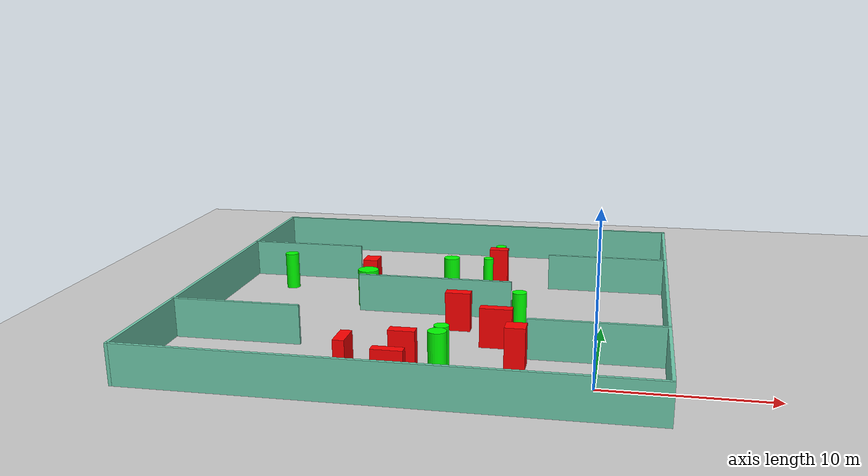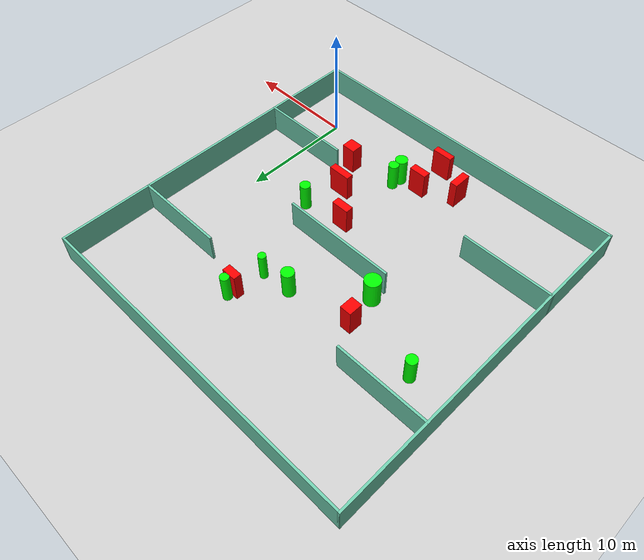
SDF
<sdf version="1.7">
 <world name="default">
  <light name="sun" type="directional">
   <pose>0 0 10 0 -0 0</pose>
   <diffuse>0.8 0.8 0.8 1</diffuse>
   <specular>0.2 0.2 0.2 1</specular>
   <attenuation>
    <range>1000</range>
    <constant>0.9</constant>
    <linear>0.01</linear>
    <quadratic>0.001</quadratic>
   </attenuation>
   <direction>-0.5 0.1 -0.9</direction>
   <spot><inner_angle>0</inner_angle><outer_angle>0</outer_angle><falloff>0</falloff></spot>
  </light>
  <model name="ground_plane">
   <static>1</static>
   <link name="link">
    <collision name="collision">
     <geometry><plane><normal>0 0 1</normal><size>100 100</size></plane></geometry>
     <surface>
      <contact><collide_bitmask>65535</collide_bitmask></contact>
      <friction><ode><mu>100</mu><mu2>50</mu2></ode></friction>
     </surface>
    </collision>
    <visual name="visual">
     <cast_shadows>0</cast_shadows>
     <geometry><plane><normal>0 0 1</normal><size>100 100</size></plane></geometry>
     <material>
      <script><uri>file://media/materials/scripts/gazebo.material</uri><name>Gazebo/Grey</name></script>
     </material>
    </visual>
   </link>
  </model>
  <gravity>0 0 -9.8</gravity>
  <magnetic_field>6e-06 2.3e-05 -4.2e-05</magnetic_field>
  <atmosphere type="adiabatic"/>
  <physics type="ode">
   <max_step_size>0.001</max_step_size>
   <real_time_factor>1</real_time_factor>
   <real_time_update_rate>1000</real_time_update_rate>
  </physics>
  <scene><ambient>0.4 0.4 0.4 1</ambient><background>0.7 0.7 0.7 1</background><shadows>1</shadows></scene>
  <spherical_coordinates>
   <surface_model>EARTH_WGS84</surface_model>
   <latitude_deg>0</latitude_deg>
   <longitude_deg>0</longitude_deg>
   <elevation>0</elevation>
   <heading_deg>0</heading_deg>
  </spherical_coordinates>
  <model name="my_base_walls">
   <link name="Wall_10">
    <collision name="Wall_10_Collision">
     <geometry><box><size>8.2 0.2 2.5</size></box></geometry>
     <pose>0 0 1.25 0 -0 0</pose>
    </collision>
    <visual name="Wall_10_Visual">
     <pose>0 0 1.25 0 -0 0</pose>
     <geometry><box><size>8.2 0.2 2.5</size></box></geometry>
     <material>
      <script><uri>file://media/materials/scripts/gazebo.material</uri><name>Gazebo/Grey</name></script>
      <ambient>0.435294 0.796078 0.67451 1</ambient>
     </material>
     <meta><layer>0</layer></meta>
    </visual>
    <pose>-11 -7 0 0 -0 0</pose>
   </link>
   <link name="Wall_12">
    <collision name="Wall_12_Collision">
     <geometry><box><size>8.2 0.2 2.5</size></box></geometry>
     <pose>0 0 1.25 0 -0 0</pose>
    </collision>
    <visual name="Wall_12_Visual">
     <pose>0 0 1.25 0 -0 0</pose>
     <geometry><box><size>8.2 0.2 2.5</size></box></geometry>
     <material>
      <script><uri>file://media/materials/scripts/gazebo.material</uri><name>Gazebo/Grey</name></script>
      <ambient>0.435294 0.796078 0.67451 1</ambient>
     </material>
     <meta><layer>0</layer></meta>
    </visual>
    <pose>-11 7 0 0 -0 0</pose>
   </link>
   <link name="Wall_14">
    <collision name="Wall_14_Collision">
     <geometry><box><size>8.2 0.2 2.5</size></box></geometry>
     <pose>0 0 1.25 0 -0 0</pose>
    </collision>
    <visual name="Wall_14_Visual">
     <pose>0 0 1.25 0 -0 0</pose>
     <geometry><box><size>8.2 0.2 2.5</size></box></geometry>
     <material>
      <script><uri>file://media/materials/scripts/gazebo.material</uri><name>Gazebo/Grey</name></script>
      <ambient>0.435294 0.796078 0.67451 1</ambient>
     </material>
     <meta><layer>0</layer></meta>
    </visual>
    <pose>11 7 0 0 -0 3.14159</pose>
   </link>
   <link name="Wall_16">
    <collision name="Wall_16_Collision">
     <geometry><box><size>10.2 0.2 2.5</size></box></geometry>
     <pose>0 0 1.25 0 -0 0</pose>
    </collision>
    <visual name="Wall_16_Visual">
     <pose>0 0 1.25 0 -0 0</pose>
     <geometry><box><size>10.2 0.2 2.5</size></box></geometry>
     <material>
      <script><uri>file://media/materials/scripts/gazebo.material</uri><name>Gazebo/Grey</name></script>
      <ambient>0.435294 0.796078 0.67451 1</ambient>
     </material>
     <meta><layer>0</layer></meta>
    </visual>
    <pose>0 0 0 0 -0 3.14159</pose>
   </link>
   <link name="Wall_2">
    <collision name="Wall_2_Collision">
     <geometry><box><size>30.2 0.2 2.5</size></box></geometry>
     <pose>0 0 1.25 0 -0 0</pose>
    </collision>
    <visual name="Wall_2_Visual">
     <pose>0 0 1.25 0 -0 0</pose>
     <geometry><box><size>30.2 0.2 2.5</size></box></geometry>
     <material>
      <script><uri>file://media/materials/scripts/gazebo.material</uri><name>Gazebo/Grey</name></script>
      <ambient>0.435294 0.796078 0.67451 1</ambient>
     </material>
     <meta><layer>0</layer></meta>
    </visual>
    <pose>0 -15 0 0 -0 3.14159</pose>
   </link>
   <link name="Wall_3">
    <collision name="Wall_3_Collision">
     <geometry><box><size>30.2 0.2 2.5</size></box></geometry>
     <pose>0 0 1.25 0 -0 0</pose>
    </collision>
    <visual name="Wall_3_Visual">
     <pose>0 0 1.25 0 -0 0</pose>
     <geometry><box><size>30.2 0.2 2.5</size></box></geometry>
     <material>
      <script><uri>file://media/materials/scripts/gazebo.material</uri><name>Gazebo/Grey</name></script>
      <ambient>0.435294 0.796078 0.67451 1</ambient>
     </material>
     <meta><layer>0</layer></meta>
    </visual>
    <pose>-15 0 0 0 -0 1.5708</pose>
   </link>
   <link name="Wall_4">
    <collision name="Wall_4_Collision">
     <geometry><box><size>30.2 0.2 2.5</size></box></geometry>
     <pose>0 0 1.25 0 -0 0</pose>
    </collision>
    <visual name="Wall_4_Visual">
     <pose>0 0 1.25 0 -0 0</pose>
     <geometry><box><size>30.2 0.2 2.5</size></box></geometry>
     <material>
      <script><uri>file://media/materials/scripts/gazebo.material</uri><name>Gazebo/Grey</name></script>
      <ambient>0.435294 0.796078 0.67451 1</ambient>
     </material>
     <meta><layer>0</layer></meta>
    </visual>
    <pose>0 15 0 0 -0 0</pose>
   </link>
   <link name="Wall_6">
    <collision name="Wall_6_Collision">
     <geometry><box><size>30.2 0.2 2.5</size></box></geometry>
     <pose>0 0 1.25 0 -0 0</pose>
    </collision>
    <visual name="Wall_6_Visual">
     <pose>0 0 1.25 0 -0 0</pose>
     <geometry><box><size>30.2 0.2 2.5</size></box></geometry>
     <material>
      <script><uri>file://media/materials/scripts/gazebo.material</uri><name>Gazebo/Grey</name></script>
      <ambient>0.435294 0.796078 0.67451 1</ambient>
     </material>
     <meta><layer>0</layer></meta>
    </visual>
    <pose>15 0 0 0 -0 1.5708</pose>
   </link>
   <link name="Wall_8">
    <collision name="Wall_8_Collision">
     <geometry><box><size>8.2 0.2 2.5</size></box></geometry>
     <pose>0 0 1.25 0 -0 0</pose>
    </collision>
    <visual name="Wall_8_Visual">
     <pose>0 0 1.25 0 -0 0</pose>
     <geometry><box><size>8.2 0.2 2.5</size></box></geometry>
     <material>
      <script><uri>file://media/materials/scripts/gazebo.material</uri><name>Gazebo/Grey</name></script>
      <ambient>0.435294 0.796078 0.67451 1</ambient>
     </material>
     <meta><layer>0</layer></meta>
    </visual>
    <pose>11 -7 0 0 -0 3.14159</pose>
   </link>
   <static>1</static>
   <pose>-11 11 0 0 -0 0</pose>
  </model>
  <model name="cylinder1">
   <static>1</static>
   <link name="link">
    <inertial>
     <mass>1</mass>
     <inertia><ixx>0.5</ixx><ixy>0</ixy><ixz>0</ixz><iyy>0.5</iyy><iyz>0</iyz><izz>1</izz></inertia>
    </inertial>
    <collision name="collision">
     <geometry><cylinder><radius>0.46143307326367605</radius><length>2.5</length></cylinder></geometry>
    </collision>
    <visual name="visual">
     <geometry><cylinder><radius>0.46143307326367605</radius><length>2.5</length></cylinder></geometry>
     <material>
      <ambient>0 1 0 1</ambient>
      <diffuse>0 1 0 1</diffuse>
      <specular>0.1 0.1 0.1 1</specular>
      <emissive>0 0 0 0</emissive>
     </material>
    </visual>
   </link>
   <pose>-22.26233523317227 15.220764103940308 1.25 0 0 0</pose>
  </model>
  <model name="cylinder2">
   <static>1</static>
   <link name="link">
    <inertial>
     <mass>1</mass>
     <inertia><ixx>0.5</ixx><ixy>0</ixy><ixz>0</ixz><iyy>0.5</iyy><iyz>0</iyz><izz>1</izz></inertia>
    </inertial>
    <collision name="collision">
     <geometry><cylinder><radius>0.6911934897044627</radius><length>2.5</length></cylinder></geometry>
    </collision>
    <visual name="visual">
     <geometry><cylinder><radius>0.6911934897044627</radius><length>2.5</length></cylinder></geometry>
     <material>
      <ambient>0 1 0 1</ambient>
      <diffuse>0 1 0 1</diffuse>
      <specular>0.1 0.1 0.1 1</specular>
      <emissive>0 0 0 0</emissive>
     </material>
    </visual>
   </link>
   <pose>-15.788793941598417 12.14639188238711 1.25 0 0 0</pose>
  </model>
  <model name="cylinder3">
   <static>1</static>
   <link name="link">
    <inertial>
     <mass>1</mass>
     <inertia><ixx>0.5</ixx><ixy>0</ixy><ixz>0</ixz><iyy>0.5</iyy><iyz>0</iyz><izz>1</izz></inertia>
    </inertial>
    <collision name="collision">
     <geometry><cylinder><radius>0.44887967327403927</radius><length>2.5</length></cylinder></geometry>
    </collision>
    <visual name="visual">
     <geometry><cylinder><radius>0.44887967327403927</radius><length>2.5</length></cylinder></geometry>
     <material>
      <ambient>0 1 0 1</ambient>
      <diffuse>0 1 0 1</diffuse>
      <specular>0.1 0.1 0.1 1</specular>
      <emissive>0 0 0 0</emissive>
     </material>
    </visual>
   </link>
   <pose>-8.751549164017922 1.9481262347736017 1.25 0 0 0</pose>
  </model>
  <model name="cylinder4">
   <static>1</static>
   <link name="link">
    <inertial>
     <mass>1</mass>
     <inertia><ixx>0.5</ixx><ixy>0</ixy><ixz>0</ixz><iyy>0.5</iyy><iyz>0</iyz><izz>1</izz></inertia>
    </inertial>
    <collision name="collision">
     <geometry><cylinder><radius>0.5429858947069153</radius><length>2.5</length></cylinder></geometry>
    </collision>
    <visual name="visual">
     <geometry><cylinder><radius>0.5429858947069153</radius><length>2.5</length></cylinder></geometry>
     <material>
      <ambient>0 1 0 1</ambient>
      <diffuse>0 1 0 1</diffuse>
      <specular>0.1 0.1 0.1 1</specular>
      <emissive>0 0 0 0</emissive>
     </material>
    </visual>
   </link>
   <pose>-10.761618668127385 16.059101572929478 1.25 0 0 0</pose>
  </model>
  <model name="cylinder5">
   <static>1</static>
   <link name="link">
    <inertial>
     <mass>1</mass>
     <inertia><ixx>0.5</ixx><ixy>0</ixy><ixz>0</ixz><iyy>0.5</iyy><iyz>0</iyz><izz>1</izz></inertia>
    </inertial>
    <collision name="collision">
     <geometry><cylinder><radius>0.5474009027819087</radius><length>2.5</length></cylinder></geometry>
    </collision>
    <visual name="visual">
     <geometry><cylinder><radius>0.5474009027819087</radius><length>2.5</length></cylinder></geometry>
     <material>
      <ambient>0 1 0 1</ambient>
      <diffuse>0 1 0 1</diffuse>
      <specular>0.1 0.1 0.1 1</specular>
      <emissive>0 0 0 0</emissive>
     </material>
    </visual>
   </link>
   <pose>-8.806666677174885 1.013188248875597 1.25 0 0 0</pose>
  </model>
  <model name="cylinder6">
   <static>1</static>
   <link name="link">
    <inertial>
     <mass>1</mass>
     <inertia><ixx>0.5</ixx><ixy>0</ixy><ixz>0</ixz><iyy>0.5</iyy><iyz>0</iyz><izz>1</izz></inertia>
    </inertial>
    <collision name="collision">
     <geometry><cylinder><radius>0.38923041453301765</radius><length>2.5</length></cylinder></geometry>
    </collision>
    <visual name="visual">
     <geometry><cylinder><radius>0.38923041453301765</radius><length>2.5</length></cylinder></geometry>
     <material>
      <ambient>0 1 0 1</ambient>
      <diffuse>0 1 0 1</diffuse>
      <specular>0.1 0.1 0.1 1</specular>
      <emissive>0 0 0 0</emissive>
     </material>
    </visual>
   </link>
   <pose>-7.762334447625676 19.665634369719523 1.25 0 0 0</pose>
  </model>
  <model name="cylinder7">
   <static>1</static>
   <link name="link">
    <inertial>
     <mass>1</mass>
     <inertia><ixx>0.5</ixx><ixy>0</ixy><ixz>0</ixz><iyy>0.5</iyy><iyz>0</iyz><izz>1</izz></inertia>
    </inertial>
    <collision name="collision">
     <geometry><cylinder><radius>0.46162092054753656</radius><length>2.5</length></cylinder></geometry>
    </collision>
    <visual name="visual">
     <geometry><cylinder><radius>0.46162092054753656</radius><length>2.5</length></cylinder></geometry>
     <material>
      <ambient>0 1 0 1</ambient>
      <diffuse>0 1 0 1</diffuse>
      <specular>0.1 0.1 0.1 1</specular>
      <emissive>0 0 0 0</emissive>
     </material>
    </visual>
   </link>
   <pose>-5.12107828561485 8.862873478387396 1.25 0 0 0</pose>
  </model>
  <model name="cylinder8">
   <static>1</static>
   <link name="link">
    <inertial>
     <mass>1</mass>
     <inertia><ixx>0.5</ixx><ixy>0</ixy><ixz>0</ixz><iyy>0.5</iyy><iyz>0</iyz><izz>1</izz></inertia>
    </inertial>
    <collision name="collision">
     <geometry><cylinder><radius>0.34160247717575665</radius><length>2.5</length></cylinder></geometry>
    </collision>
    <visual name="visual">
     <geometry><cylinder><radius>0.34160247717575665</radius><length>2.5</length></cylinder></geometry>
     <material>
      <ambient>0 1 0 1</ambient>
      <diffuse>0 1 0 1</diffuse>
      <specular>0.1 0.1 0.1 1</specular>
      <emissive>0 0 0 0</emissive>
     </material>
    </visual>
   </link>
   <pose>-8.208841317098432 16.35945716927815 1.25 0 0 0</pose>
  </model>
  <model name="box1">
   <static>1</static>
   <link name="link">
    <inertial>
     <mass>1</mass>
     <inertia><ixx>0.083</ixx><ixy>0</ixy><ixz>0</ixz><iyy>0.083</iyy><iyz>0</iyz><izz>0.083</izz></inertia>
    </inertial>
    <collision name="collision">
     <geometry><box><size>1.5598460591880268 0.6751363028051518 2.5</size></box></geometry>
    </collision>
    <visual name="visual">
     <geometry><box><size>1.5598460591880268 0.6751363028051518 2.5</size></box></geometry>
     <material>
      <ambient>1 0 0 1</ambient>
      <diffuse>1 0 0 1</diffuse>
      <specular>0.1 0.1 0.1 1</specular>
      <emissive>0 0 0 0</emissive>
     </material>
    </visual>
    <sensor name="my_contact" type="contact">
     <contact><collision>box_collision</collision><topic>__default_topic__</topic></contact>
    </sensor>
   </link>
   <pose>-10.783416196331844 0.9362984661633864 1.25 0 0 0</pose>
  </model>
  <model name="box2">
   <static>1</static>
   <link name="link">
    <inertial>
     <mass>1</mass>
     <inertia><ixx>0.083</ixx><ixy>0</ixy><ixz>0</ixz><iyy>0.083</iyy><iyz>0</iyz><izz>0.083</izz></inertia>
    </inertial>
    <collision name="collision">
     <geometry><box><size>0.6745146892905621 1.6765782801519216 2.5</size></box></geometry>
    </collision>
    <visual name="visual">
     <geometry><box><size>0.6745146892905621 1.6765782801519216 2.5</size></box></geometry>
     <material>
      <ambient>1 0 0 1</ambient>
      <diffuse>1 0 0 1</diffuse>
      <specular>0.1 0.1 0.1 1</specular>
      <emissive>0 0 0 0</emissive>
     </material>
    </visual>
    <sensor name="my_contact" type="contact">
     <contact><collision>box_collision</collision><topic>__default_topic__</topic></contact>
    </sensor>
   </link>
   <pose>-13.81316299997184 -0.5981667480865096 1.25 0 0 0</pose>
  </model>
  <model name="box3">
   <static>1</static>
   <link name="link">
    <inertial>
     <mass>1</mass>
     <inertia><ixx>0.083</ixx><ixy>0</ixy><ixz>0</ixz><iyy>0.083</iyy><iyz>0</iyz><izz>0.083</izz></inertia>
    </inertial>
    <collision name="collision">
     <geometry><box><size>1.7989117843901867 0.5864821206403373 2.5</size></box></geometry>
    </collision>
    <visual name="visual">
     <geometry><box><size>1.7989117843901867 0.5864821206403373 2.5</size></box></geometry>
     <material>
      <ambient>1 0 0 1</ambient>
      <diffuse>1 0 0 1</diffuse>
      <specular>0.1 0.1 0.1 1</specular>
      <emissive>0 0 0 0</emissive>
     </material>
    </visual>
    <sensor name="my_contact" type="contact">
     <contact><collision>box_collision</collision><topic>__default_topic__</topic></contact>
    </sensor>
   </link>
   <pose>-10.87239296740519 -2.145256589855637 1.25 0 0 0</pose>
  </model>
  <model name="box4">
   <static>1</static>
   <link name="link">
    <inertial>
     <mass>1</mass>
     <inertia><ixx>0.083</ixx><ixy>0</ixy><ixz>0</ixz><iyy>0.083</iyy><iyz>0</iyz><izz>0.083</izz></inertia>
    </inertial>
    <collision name="collision">
     <geometry><box><size>1.0024663429196825 1.2198412573094826 2.5</size></box></geometry>
    </collision>
    <visual name="visual">
     <geometry><box><size>1.0024663429196825 1.2198412573094826 2.5</size></box></geometry>
     <material>
      <ambient>1 0 0 1</ambient>
      <diffuse>1 0 0 1</diffuse>
      <specular>0.1 0.1 0.1 1</specular>
      <emissive>0 0 0 0</emissive>
     </material>
    </visual>
    <sensor name="my_contact" type="contact">
     <contact><collision>box_collision</collision><topic>__default_topic__</topic></contact>
    </sensor>
   </link>
   <pose>-16.254109598789213 14.941221238915482 1.25 0 0 0</pose>
  </model>
  <model name="box5">
   <static>1</static>
   <link name="link">
    <inertial>
     <mass>1</mass>
     <inertia><ixx>0.083</ixx><ixy>0</ixy><ixz>0</ixz><iyy>0.083</iyy><iyz>0</iyz><izz>0.083</izz></inertia>
    </inertial>
    <collision name="collision">
     <geometry><box><size>1.2209336856033635 1.0768970148426695 2.5</size></box></geometry>
    </collision>
    <visual name="visual">
     <geometry><box><size>1.2209336856033635 1.0768970148426695 2.5</size></box></geometry>
     <material>
      <ambient>1 0 0 1</ambient>
      <diffuse>1 0 0 1</diffuse>
      <specular>0.1 0.1 0.1 1</specular>
      <emissive>0 0 0 0</emissive>
     </material>
    </visual>
    <sensor name="my_contact" type="contact">
     <contact><collision>box_collision</collision><topic>__default_topic__</topic></contact>
    </sensor>
   </link>
   <pose>-4.588534510086898 2.678356258230256 1.25 0 0 0</pose>
  </model>
  <model name="box6">
   <static>1</static>
   <link name="link">
    <inertial>
     <mass>1</mass>
     <inertia><ixx>0.083</ixx><ixy>0</ixy><ixz>0</ixz><iyy>0.083</iyy><iyz>0</iyz><izz>0.083</izz></inertia>
    </inertial>
    <collision name="collision">
     <geometry><box><size>1.3053467908224876 0.6954604716876875 2.5</size></box></geometry>
    </collision>
    <visual name="visual">
     <geometry><box><size>1.3053467908224876 0.6954604716876875 2.5</size></box></geometry>
     <material>
      <ambient>1 0 0 1</ambient>
      <diffuse>1 0 0 1</diffuse>
      <specular>0.1 0.1 0.1 1</specular>
      <emissive>0 0 0 0</emissive>
     </material>
    </visual>
    <sensor name="my_contact" type="contact">
     <contact><collision>box_collision</collision><topic>__default_topic__</topic></contact>
    </sensor>
   </link>
   <pose>-7.806075953177395 18.976492242852526 1.25 0 0 0</pose>
  </model>
  <model name="box7">
   <static>1</static>
   <link name="link">
    <inertial>
     <mass>1</mass>
     <inertia><ixx>0.083</ixx><ixy>0</ixy><ixz>0</ixz><iyy>0.083</iyy><iyz>0</iyz><izz>0.083</izz></inertia>
    </inertial>
    <collision name="collision">
     <geometry><box><size>1.9872365606989313 0.6335750819768591 2.5</size></box></geometry>
    </collision>
    <visual name="visual">
     <geometry><box><size>1.9872365606989313 0.6335750819768591 2.5</size></box></geometry>
     <material>
      <ambient>1 0 0 1</ambient>
      <diffuse>1 0 0 1</diffuse>
      <specular>0.1 0.1 0.1 1</specular>
      <emissive>0 0 0 0</emissive>
     </material>
    </visual>
    <sensor name="my_contact" type="contact">
     <contact><collision>box_collision</collision><topic>__default_topic__</topic></contact>
    </sensor>
   </link>
   <pose>-6.123599233976275 5.618040299668513 1.25 0 0 0</pose>
  </model>
  <model name="box8">
   <static>1</static>
   <link name="link">
    <inertial>
     <mass>1</mass>
     <inertia><ixx>0.083</ixx><ixy>0</ixy><ixz>0</ixz><iyy>0.083</iyy><iyz>0</iyz><izz>0.083</izz></inertia>
    </inertial>
    <collision name="collision">
     <geometry><box><size>1.586834160056896 0.7123257477110879 2.5</size></box></geometry>
    </collision>
    <visual name="visual">
     <geometry><box><size>1.586834160056896 0.7123257477110879 2.5</size></box></geometry>
     <material>
      <ambient>1 0 0 1</ambient>
      <diffuse>1 0 0 1</diffuse>
      <specular>0.1 0.1 0.1 1</specular>
      <emissive>0 0 0 0</emissive>
     </material>
    </visual>
    <sensor name="my_contact" type="contact">
     <contact><collision>box_collision</collision><topic>__default_topic__</topic></contact>
    </sensor>
   </link>
   <pose>-8.904028817785836 8.313541957070841 1.25 0 0 0</pose>
  </model>
 </world>
</sdf>
